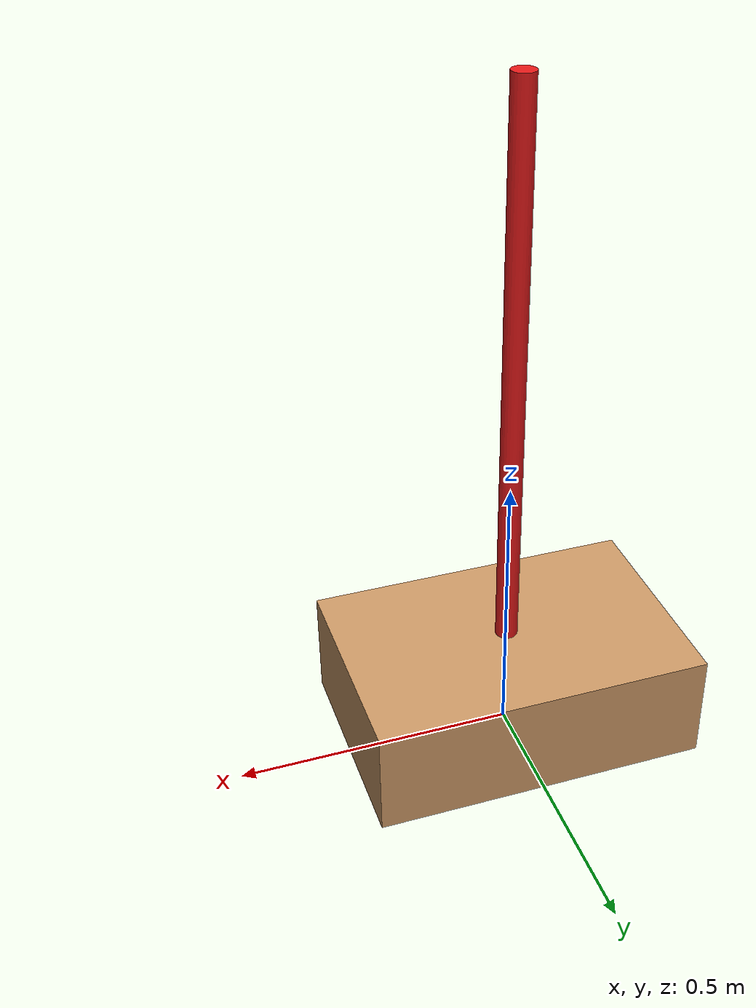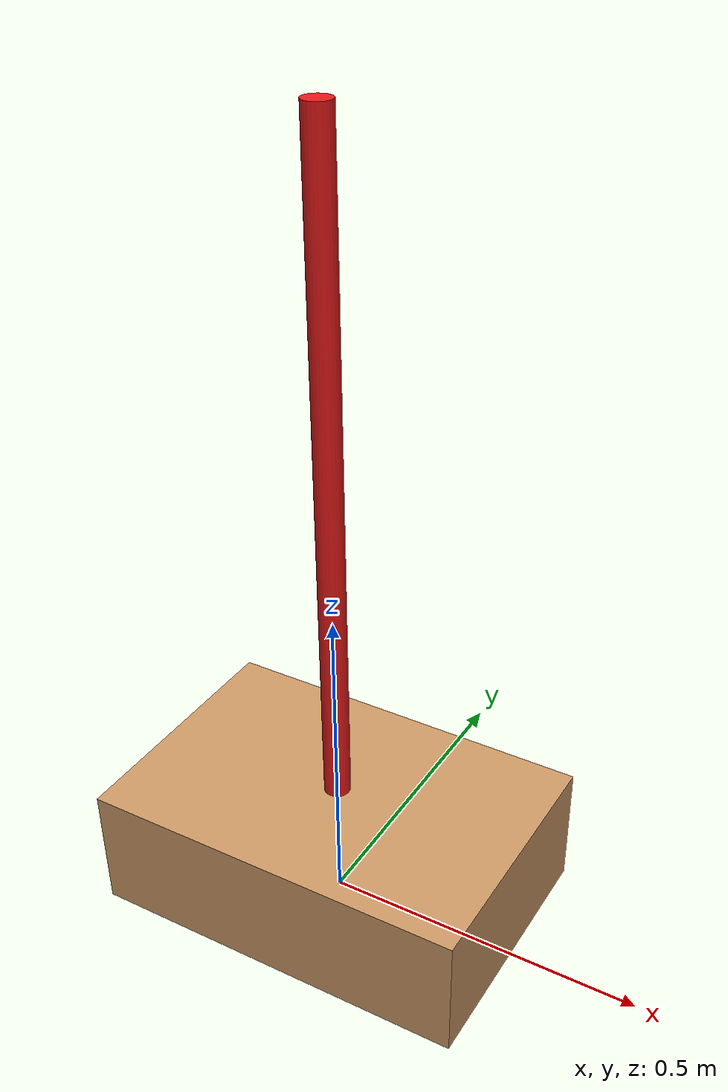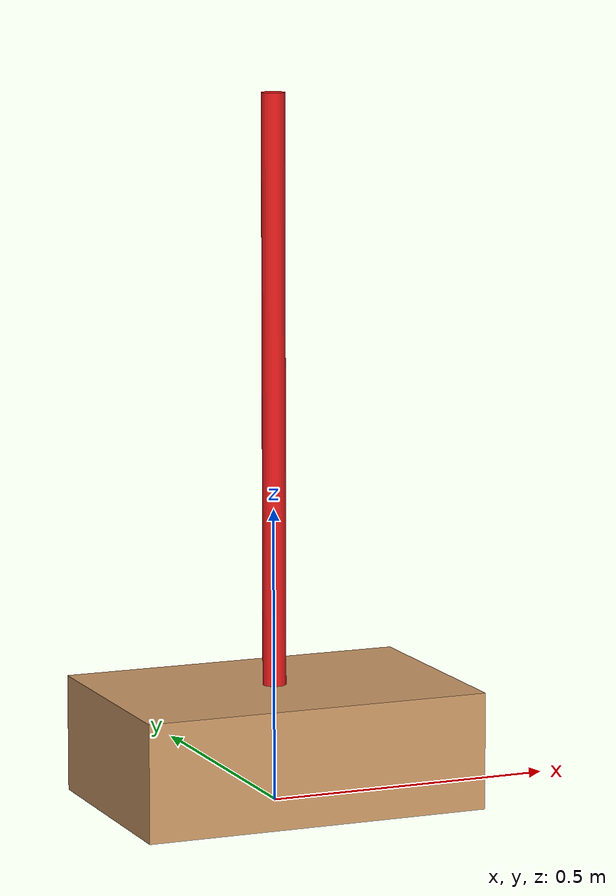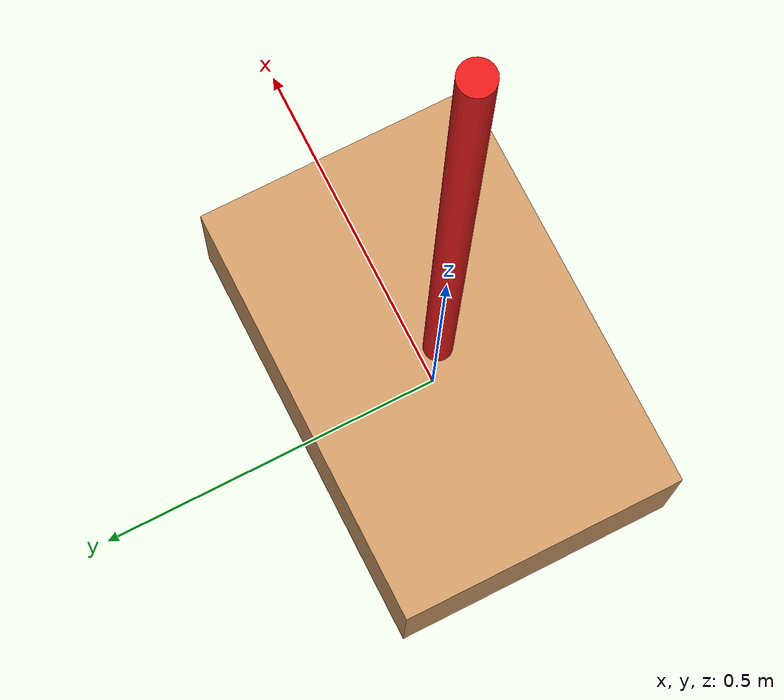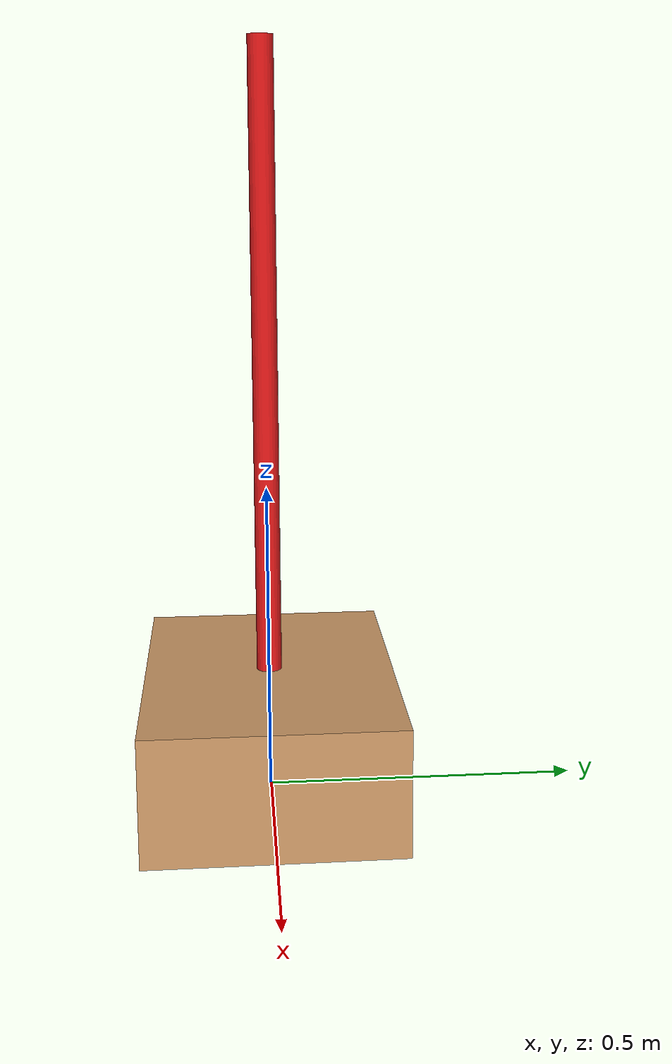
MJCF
<mujoco model="cartpole">
  <compiler angle="radian" autolimits="true"/>

  <default>
    <joint damping="0.01" armature="0.0"/>
    <geom friction="0.1 0.005 0.0001"/>
  </default>

  <worldbody>
    <!-- Cart: box sliding along x-axis -->
    <body name="cart" pos="0 0 0.1">
      <joint name="slider" type="slide" axis="1 0 0" range="-2.4 2.4" damping="0.01"/>
      <!-- density = 1.0 kg / (0.6*0.4*0.2 m^3) = 20.833 kg/m^3 → mass = 1.0 kg -->
      <geom name="cart_geom" type="box" size="0.3 0.2 0.1" rgba="0.8 0.6 0.4 1" density="20.833"/>

      <!-- Pole: cylinder hinged at top of cart -->
      <body name="pole" pos="0 0 0.1">
        <joint name="hinge" type="hinge" axis="0 1 0" damping="0.001"/>
        <!-- density = 80.1 kg/m^3 → mass ≈ 0.1 kg in both MuJoCo and SAPIEN
             (MuJoCo: pi*0.02^2*1.0 * 80.1 = 0.1007 kg;
              SAPIEN: 0.0012486 m^3 * 80.1 = 0.100 kg) -->
        <geom name="pole_geom" type="cylinder" size="0.02 0.5" fromto="0 0 0 0 0 1" rgba="0.9 0.1 0.1 1" density="80.1"/>
      </body>
    </body>
  </worldbody>

  <actuator>
    <motor name="cart_motor" joint="slider" ctrlrange="-3 3"/>
  </actuator>
</mujoco>
